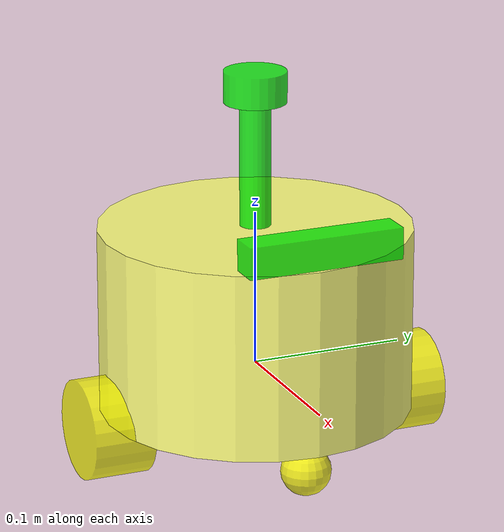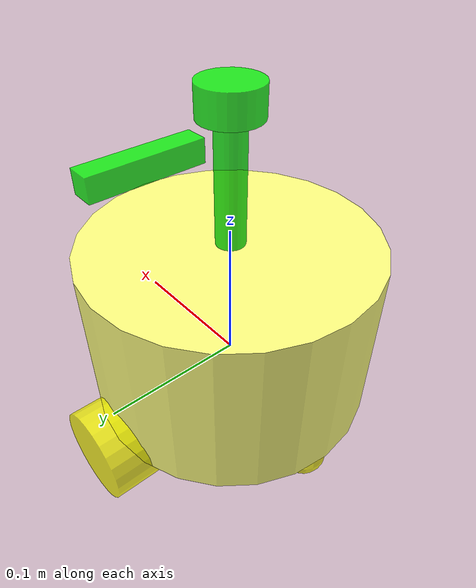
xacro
<?xml version="1.0"?>
<robot xmlns:xacro="http://www.ros.org/wiki/xacro" name="fishbot">

    <!-- 引入所有组件（保留你的原有引入） -->
    <xacro:include filename="$(find fishbot_description)/urdf/fishbot/base.urdf.xacro"/>
    <xacro:include filename="$(find fishbot_description)/urdf/fishbot/sensor/imu.urdf.xacro"/>
    <xacro:include filename="$(find fishbot_description)/urdf/fishbot/sensor/laser.urdf.xacro"/>
    <xacro:include filename="$(find fishbot_description)/urdf/fishbot/sensor/camera.urdf.xacro"/>
    <xacro:include filename="$(find fishbot_description)/urdf/fishbot/actuator/caster.urdf.xacro"/>
    <xacro:include filename="$(find fishbot_description)/urdf/fishbot/actuator/wheel.urdf.xacro"/>
    <xacro:include filename="$(find fishbot_description)/urdf/fishbot/plugins/gazebo_control_plugin.xacro"/>

    <!-- 关键：引入ros2_control配置文件（对应你的fishbot.ros2_control.xacro） -->
    <xacro:include filename="$(find fishbot_description)/urdf/fishbot/fishbot.ros2_control.xacro" />

    <!-- 定义 base_footprint (地面参考点) -->
    <link name="base_footprint" />
    <joint name="base_footprint_to_base_link" type="fixed">
        <parent link="base_footprint" />
        <child link="base_link" />
        <origin xyz="0 0 0.032" rpy="0 0 0" />
    </joint>

    <!-- 实例化原有组件 -->
    <xacro:base_xacro length="0.12" radius="0.1" />
    <xacro:imu_xacro xyz="0.0 0.0 0.02" />
    <xacro:laser_xacro xyz="0.0 0.0 0.10" />
    <xacro:camera_xacro xyz="0.10 0.0 0.075" />
    <xacro:wheel_xacro wheel_name="left" xyz="0 0.10 -0.06" />
    <xacro:wheel_xacro wheel_name="right" xyz="0 -0.10 -0.06" />
    <xacro:caster_xacro caster_name="front" xyz="0.08 0.0 -0.076" />
    <xacro:caster_xacro caster_name="back" xyz="-0.08 0.0 -0.076" />

    <!-- 注释冲突的差速插件 -->

    <!-- 关键：调用ros2_control宏，加载硬件配置+Gazebo插件 -->
    <xacro:fishbot_ros2_control />

</robot>

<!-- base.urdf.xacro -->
<robot xmlns:xacro="http://www.ros.org/wiki/xacro" name="base">
    <xacro:include filename="$(find fishbot_description)/urdf/fishbot/common_inertia.xacro"/>

    <xacro:macro name="base_xacro" params="length radius">
        <!-- 只定义 base_link,不再定义 base_footprint -->
        <link name="base_link">
            <visual>
                <origin xyz="0 0 0.0" rpy="0 0 0" />
                <geometry>
                    <cylinder radius="${radius}" length="${length}" />
                </geometry>
                <material name="white">
                    <color rgba="1.0 1.0 0.5 1.0" />
                </material>
            </visual>

            <collision>
                <origin xyz="0 0 0.0" rpy="0 0 0" />
                <geometry>
                    <cylinder radius="${radius}" length="${length}" />
                </geometry>
            </collision>

            <xacro:cylinder_inertia m="1.0" r="${radius}" h="${length}"/>
        </link>

        <!-- 添加 Gazebo 材质 -->
        <gazebo reference="base_link">
            <material>Gazebo/White</material>
        </gazebo>
    </xacro:macro>
</robot>

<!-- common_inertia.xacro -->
<!-- 惯性张量宏定义合集，兼容ROS1/ROS2，提供立方体、圆柱体、球体的惯性参数生成 -->
<robot xmlns:xacro="http://ros.org/wiki/xacro" name="comment_inertia">

    <!-- 立方体惯性张量宏定义
         params参数说明：
         m: 立方体质量(kg)
         w: 宽度(x轴方向, m)
         h: 高度(y轴方向, m)
         d: 深度(z轴方向, m)
         惯性公式：立方体绕中心轴的惯性张量标准公式 -->
    <xacro:macro name="box_inertia" params="m w h d">
        <inertial>
            <mass value="${m}" />
            <inertia ixx="${(m/12) * (h*h + d*d)}"
                     ixy="0.0"
                     ixz="0.0"
                     iyy="${(m/12) * (w*w + d*d)}"
                     iyz="0.0"
                     izz="${(m/12) * (w*w + h*h)}" />
        </inertial>
    </xacro:macro>

    <!-- 圆柱体惯性张量宏定义（中心轴沿z轴）
         params参数说明：
         m: 圆柱体质量(kg)
         r: 底面半径(m)
         h: 柱体高度(z轴方向, m)
         惯性公式：圆柱体绕中心轴(z)的转动惯量为1/2mr²，绕x/y轴为1/12(3r²+h²) -->
    <xacro:macro name="cylinder_inertia" params="m r h">
        <inertial>
            <mass value="${m}" />
            <inertia ixx="${(m/12) * (3*r*r + h*h)}"
                     ixy="0.0"
                     ixz="0.0"
                     iyy="${(m/12) * (3*r*r + h*h)}"
                     iyz="0.0"
                     izz="${(m/2) * r*r}" />
        </inertial>
    </xacro:macro>

    <!-- 球体惯性张量宏定义（均质球体）
         params参数说明：
         m: 球体质量(kg)
         r: 球体半径(m)
         惯性公式：均质球体绕任意过中心轴的转动惯量均为2/5mr² -->
    <xacro:macro name="sphere_inertia" params="m r">
        <inertial>
            <mass value="${m}" />
            <inertia ixx="${(2/5) * m * r*r}"
                     ixy="0.0"
                     ixz="0.0"
                     iyy="${(2/5) * m * r*r}"
                     iyz="0.0"
                     izz="${(2/5) * m * r*r}" />
        </inertial>
    </xacro:macro>

</robot>

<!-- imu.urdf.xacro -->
<!-- robot是URDF/XACRO 的唯一根节点 -->

<!-- xmlns:xacro="http://www.ros.org/wiki/xacro"：引入XACRO 的 XML 命名空间 -->
<robot xmlns:xacro="http://www.ros.org/wiki/xacro" name="imu">
    <!-- name="base_xacro"：宏的名称，调用这个宏时需要用这个名字（类似函数名）。 -->
    <xacro:macro name="imu_xacro" params="xyz">
        <link name="imu_link">
            <visual>
                <origin xyz="0.0 0.0 0.0" rpy="0.0 0.0 0.0"/>
                <geometry>
                    <box size="0.02 0.02 0.02" />
                </geometry>
                <material name="black">
                    <color rgba="0.0 0.0 0.0 0.8"/>
                </material>
            </visual>

            <!-- 补充碰撞几何：和visual一致 -->
            <collision>
                <origin xyz="0.0 0.0 0.0" rpy="0.0 0.0 0.0"/>
                <geometry>
                    <box size="0.02 0.02 0.02" />
                </geometry>
            </collision>
            <!-- 补充立方体惯性：质量0.01kg（IMU模块极小，质量极轻） -->
            <xacro:box_inertia m="0.01" w="0.02" h="0.02" d="0.02"/>

        </link>

        <joint name="imu_joint" type="fixed">
            <parent link="base_link"/>
            <child link="imu_link"/>
            <origin xyz="${xyz}" />
        </joint>
    </xacro:macro>
</robot>

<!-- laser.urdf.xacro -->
<robot xmlns:xacro="http://www.ros.org/wiki/xacro" name="laser">

    <!-- 圆柱体惯性宏定义 -->
    <xacro:macro name="cylinder_inertia" params="m r h">
        <inertial>
            <mass value="${m}"/>
            <inertia ixx="${m*(3*r*r+h*h)/12}" ixy="0.0" ixz="0.0"
                     iyy="${m*(3*r*r+h*h)/12}" iyz="0.0"
                     izz="${m*r*r/2}"/>
        </inertial>
    </xacro:macro>

    <xacro:macro name="laser_xacro" params="xyz">
        <!-- 雷达支撑杆 -->
        <link name="laser_cylinder_link">
            <visual>
                <origin xyz="0.0 0.0 0.0" rpy="0.0 0.0 0.0"/>
                <geometry>
                    <cylinder radius="0.01" length="0.10"/>
                </geometry>
                <material name="green">
                    <color rgba="0.0 1.0 0.0 0.8"/>
                </material>
            </visual>
            <collision>
                <origin xyz="0.0 0.0 0.0" rpy="0.0 0.0 0.0"/>
                <geometry>
                    <cylinder radius="0.01" length="0.10"/>
                </geometry>
            </collision>
            <xacro:cylinder_inertia m="0.01" r="0.01" h="0.10"/>
        </link>

        <gazebo reference="laser_cylinder_link">
            <material>Gazebo/Black</material>
        </gazebo>

        <joint name="laser_cylinder_joint" type="fixed">
            <parent link="base_link"/>
            <child link="laser_cylinder_link"/>
            <origin xyz="${xyz}"/>
        </joint>

        <!-- 雷达本体 -->
        <link name="laser_link">
            <visual>
                <origin xyz="0.0 0.0 0.0" rpy="0.0 0.0 0.0" />
                <geometry>
                    <cylinder radius="0.02" length="0.02"/>
                </geometry>
                <material name="green">
                    <color rgba="0.0 1.0 0.0 0.8"/>
                </material>
            </visual>
            <collision>
                <origin xyz="0.0 0.0 0.0" rpy="0.0 0.0 0.0" />
                <geometry>
                    <cylinder radius="0.02" length="0.02"/>
                </geometry>
            </collision>
            <xacro:cylinder_inertia m="0.01" r="0.02" h="0.02"/>
        </link>

        <gazebo reference="laser_link">
            <material>Gazebo/Black</material>
        </gazebo>

        <joint name="laser_joint" type="fixed">
            <parent link="laser_cylinder_link" />
            <child link="laser_link" />
            <origin xyz="0.0 0.0 0.05"/>
        </joint>
    </xacro:macro>
</robot>

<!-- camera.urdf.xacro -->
<!-- robot是URDF/XACRO 的唯一根节点 -->
<!-- xmlns:xacro="http://www.ros.org/wiki/xacro"：引入XACRO 的 XML 命名空间 -->
<robot xmlns:xacro="http://www.ros.org/wiki/xacro" name="camera">
    <xacro:macro name="camera_xacro" params="xyz">
        <!-- ============ 相机模块 ================ -->
        <link name="camera_link">
            <visual>
                <origin xyz="0.0 0.0 0.0" rpy="0.0 0.0 0.0"/>
                <geometry>
                    <box size="0.02 0.10 0.02"/>
                </geometry>
                <material name="green">
                    <color rgba="0.0 1.0 0.0 0.8"/>
                </material>
            </visual>

            <!-- 补充碰撞几何：和visual一致 -->
            <collision>
                <origin xyz="0.0 0.0 0.0" rpy="0.0 0.0 0.0"/>
                <geometry>
                    <box size="0.02 0.10 0.02"/>
                </geometry>
            </collision>
            <!-- 补充立方体惯性：质量0.02kg（相机支架+镜头，轻量） -->
            <xacro:box_inertia m="0.02" w="0.02" h="0.10" d="0.02"/>

        </link>

        <!-- ========== 新增相机光学坐标系链接与关节 ========== -->
        <link name="camera_optical_link"></link>
        <joint name="camera_optical_joint" type="fixed">
            <parent link="camera_link" />
            <child link="camera_optical_link" />
            <origin xyz="0 0 0" rpy="${-pi/2} 0 ${-pi/2}" />
        </joint>

        <joint name="camera_joint" type="fixed">
            <parent link="base_link"/>
            <child link="camera_link"/>
            <origin xyz="${xyz}"/>
        </joint>
    </xacro:macro>
</robot>

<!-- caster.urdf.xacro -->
<robot xmlns:xacro="http://www.ros.org/wiki/xacro" name="caster">
    <xacro:macro name="caster_xacro" params="caster_name xyz">
        <link name="${caster_name}_wheel_link">
            <visual>
                <origin xyz="0.0 0.0 0.0" rpy="0.0 0.0 0.0"/>
                <geometry>
                    <sphere radius="0.016" />
                </geometry>
                <material name="yellow">
                    <color rgba="1.0 1.0 0.0 0.8"/>
                </material>
            </visual>

            <collision>
                <origin xyz="0.0 0.0 0.0" rpy="0.0 0.0 0.0"/>
                <geometry>
                    <sphere radius="0.016" />
                </geometry>
            </collision>
            <xacro:sphere_inertia m="0.005" r="0.016"/>
        </link>

        <joint name="${caster_name}_wheel_joint" type="fixed">
            <parent link="base_link"/>
            <child link="${caster_name}_wheel_link"/>
            <origin xyz="${xyz}"/>
        </joint>

        <gazebo reference="${caster_name}_wheel_link">
            <mu1 value="0.0" />
            <mu2 value="0.0" />
            <kp value="1000000000.0" />
            <kd value="1.0" />
            <material>Gazebo/Yellow</material>
        </gazebo>
    </xacro:macro>
</robot>

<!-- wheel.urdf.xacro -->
<robot xmlns:xacro="http://www.ros.org/wiki/xacro" name="wheel">
    <xacro:macro name="wheel_xacro" params="wheel_name xyz">
        <link name="${wheel_name}_wheel_link">
            <visual>
                <origin xyz="0.0 0.0 0.0" rpy="1.57079 0.0 0.0"/>
                <geometry>
                    <cylinder radius="0.032" length="0.04"/>
                </geometry>
                <material name="yellow">
                    <color rgba="1.0 1.0 0.0 0.8"/>
                </material>
            </visual>

            <collision>
                <origin xyz="0.0 0.0 0.0" rpy="1.57079 0.0 0.0"/>
                <geometry>
                    <cylinder radius="0.032" length="0.04"/>
                </geometry>
            </collision>
            <xacro:cylinder_inertia m="0.02" r="0.032" h="0.04"/>
        </link>

        <!-- 修改关节名称,添加 _joint 后缀 -->
        <joint name="${wheel_name}_wheel_joint" type="continuous">
            <parent link="base_link"/>
            <child link="${wheel_name}_wheel_link"/>
            <origin xyz="${xyz}"/>
            <axis xyz="0.0 1.0 0.0"/>
        </joint>

        <gazebo reference="${wheel_name}_wheel_link">
            <mu1 value="100.0" />
            <mu2 value="100.0" />
            <kp value="1000000000.0" />
            <kd value="1.0" />
            <material>Gazebo/Yellow</material>
        </gazebo>
    </xacro:macro>
</robot>
